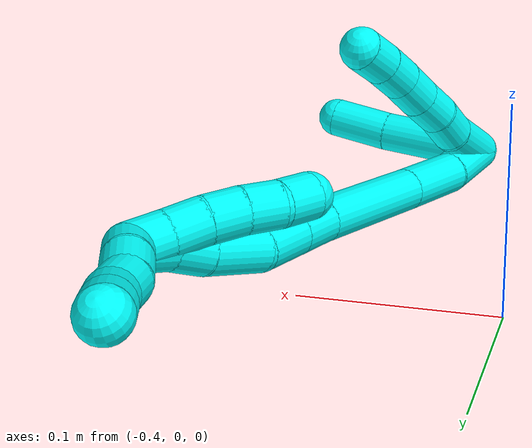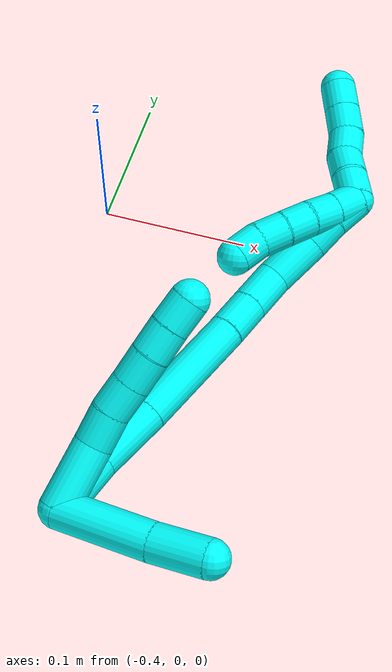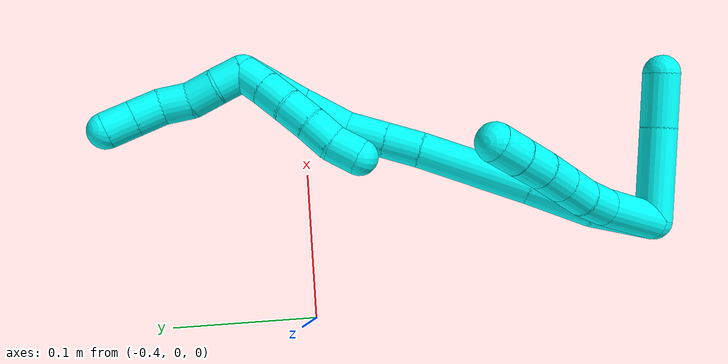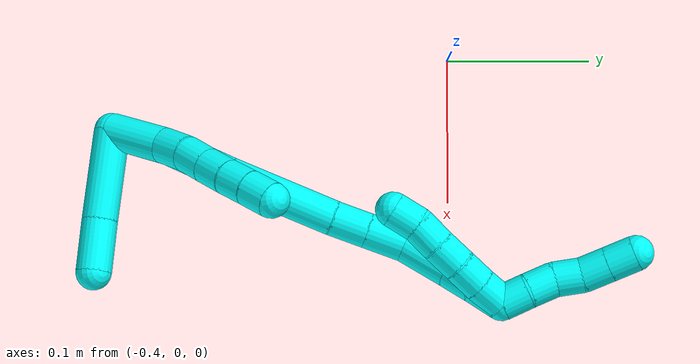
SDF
<sdf version="1.7">
 <world name="default">
  <model name="3">
   <static>0</static>
   <link name="3">
    <collision name="collision-cylinder-e_1_2_8">
     <pose>-0.007446 0.007907 -0.019143 -2.74989 -0.345115 1.44163</pose>
     <geometry><cylinder><radius>0.0125</radius><length>0.044018</length></cylinder></geometry>
     <surface>
      <friction><ode><mu>1.16</mu><mu2>1.16</mu2><slip1>0</slip1><slip2>0</slip2></ode></friction>
      <contact><ode><kp>1e+06</kp><kd>1</kd><max_vel>0</max_vel><min_depth>0.001</min_depth></ode></contact>
     </surface>
    </collision>
    <visual name="visual-cylinder-e_1_2_8">
     <pose>-0.007446 0.007907 -0.019143 -2.74989 -0.345115 1.44163</pose>
     <geometry><cylinder><radius>0.0125</radius><length>0.044018</length></cylinder></geometry>
     <material><ambient>0.003922 1 0.996078 1</ambient></material>
    </visual>
    <collision name="collision-cylinder-e_2_8_9">
     <pose>-0.018914 0.017465 -0.049012 -2.98883 -0.354906 2.33492</pose>
     <geometry><cylinder><radius>0.0125</radius><length>0.023148</length></cylinder></geometry>
     <surface>
      <friction><ode><mu>1.16</mu><mu2>1.16</mu2><slip1>0</slip1><slip2>0</slip2></ode></friction>
      <contact><ode><kp>1e+06</kp><kd>1</kd><max_vel>0</max_vel><min_depth>0.001</min_depth></ode></contact>
     </surface>
    </collision>
    <visual name="visual-cylinder-e_2_8_9">
     <pose>-0.018914 0.017465 -0.049012 -2.98883 -0.354906 2.33492</pose>
     <geometry><cylinder><radius>0.0125</radius><length>0.023148</length></cylinder></geometry>
     <material><ambient>0.003922 1 0.996078 1</ambient></material>
    </visual>
    <collision name="collision-cylinder-e_3_9_10">
     <pose>-0.028024 0.020545 -0.069052 -2.98946 -0.495143 2.55588</pose>
     <geometry><cylinder><radius>0.0125</radius><length>0.021419</length></cylinder></geometry>
     <surface>
      <friction><ode><mu>1.16</mu><mu2>1.16</mu2><slip1>0</slip1><slip2>0</slip2></ode></friction>
      <contact><ode><kp>1e+06</kp><kd>1</kd><max_vel>0</max_vel><min_depth>0.001</min_depth></ode></contact>
     </surface>
    </collision>
    <visual name="visual-cylinder-e_3_9_10">
     <pose>-0.028024 0.020545 -0.069052 -2.98946 -0.495143 2.55588</pose>
     <geometry><cylinder><radius>0.0125</radius><length>0.021419</length></cylinder></geometry>
     <material><ambient>0.003922 1 0.996078 1</ambient></material>
    </visual>
    <collision name="collision-cylinder-e_4_10_11">
     <pose>-0.037881 0.023172 -0.087733 -3.01426 -0.467569 2.61843</pose>
     <geometry><cylinder><radius>0.0125</radius><length>0.021157</length></cylinder></geometry>
     <surface>
      <friction><ode><mu>1.16</mu><mu2>1.16</mu2><slip1>0</slip1><slip2>0</slip2></ode></friction>
      <contact><ode><kp>1e+06</kp><kd>1</kd><max_vel>0</max_vel><min_depth>0.001</min_depth></ode></contact>
     </surface>
    </collision>
    <visual name="visual-cylinder-e_4_10_11">
     <pose>-0.037881 0.023172 -0.087733 -3.01426 -0.467569 2.61843</pose>
     <geometry><cylinder><radius>0.0125</radius><length>0.021157</length></cylinder></geometry>
     <material><ambient>0.003922 1 0.996078 1</ambient></material>
    </visual>
    <collision name="collision-cylinder-e_5_11_12">
     <pose>-0.047202 0.026242 -0.105905 -2.93223 -0.468348 2.31185</pose>
     <geometry><cylinder><radius>0.0125</radius><length>0.020176</length></cylinder></geometry>
     <surface>
      <friction><ode><mu>1.16</mu><mu2>1.16</mu2><slip1>0</slip1><slip2>0</slip2></ode></friction>
      <contact><ode><kp>1e+06</kp><kd>1</kd><max_vel>0</max_vel><min_depth>0.001</min_depth></ode></contact>
     </surface>
    </collision>
    <visual name="visual-cylinder-e_5_11_12">
     <pose>-0.047202 0.026242 -0.105905 -2.93223 -0.468348 2.31185</pose>
     <geometry><cylinder><radius>0.0125</radius><length>0.020176</length></cylinder></geometry>
     <material><ambient>0.003922 1 0.996078 1</ambient></material>
    </visual>
    <collision name="collision-cylinder-e_6_12_6">
     <pose>-0.056587 0.030389 -0.123213 -2.87998 -0.501934 2.19338</pose>
     <geometry><cylinder><radius>0.0125</radius><length>0.020083</length></cylinder></geometry>
     <surface>
      <friction><ode><mu>1.16</mu><mu2>1.16</mu2><slip1>0</slip1><slip2>0</slip2></ode></friction>
      <contact><ode><kp>1e+06</kp><kd>1</kd><max_vel>0</max_vel><min_depth>0.001</min_depth></ode></contact>
     </surface>
    </collision>
    <visual name="visual-cylinder-e_6_12_6">
     <pose>-0.056587 0.030389 -0.123213 -2.87998 -0.501934 2.19338</pose>
     <geometry><cylinder><radius>0.0125</radius><length>0.020083</length></cylinder></geometry>
     <material><ambient>0.003922 1 0.996078 1</ambient></material>
    </visual>
    <collision name="collision-cylinder-e_1_2_13">
     <pose>-0.030538 -0.007855 0.001901 1.33341 -1.31207 -1.08926</pose>
     <geometry><cylinder><radius>0.0125</radius><length>0.063179</length></cylinder></geometry>
     <surface>
      <friction><ode><mu>1.16</mu><mu2>1.16</mu2><slip1>0</slip1><slip2>0</slip2></ode></friction>
      <contact><ode><kp>1e+06</kp><kd>1</kd><max_vel>0</max_vel><min_depth>0.001</min_depth></ode></contact>
     </surface>
    </collision>
    <visual name="visual-cylinder-e_1_2_13">
     <pose>-0.030538 -0.007855 0.001901 1.33341 -1.31207 -1.08926</pose>
     <geometry><cylinder><radius>0.0125</radius><length>0.063179</length></cylinder></geometry>
     <material><ambient>0.003922 1 0.996078 1</ambient></material>
    </visual>
    <collision name="collision-cylinder-e_2_13_5">
     <pose>-0.078774 -0.020771 0.003429 1.64421 -1.29157 -1.36286</pose>
     <geometry><cylinder><radius>0.0125</radius><length>0.036821</length></cylinder></geometry>
     <surface>
      <friction><ode><mu>1.16</mu><mu2>1.16</mu2><slip1>0</slip1><slip2>0</slip2></ode></friction>
      <contact><ode><kp>1e+06</kp><kd>1</kd><max_vel>0</max_vel><min_depth>0.001</min_depth></ode></contact>
     </surface>
    </collision>
    <visual name="visual-cylinder-e_2_13_5">
     <pose>-0.078774 -0.020771 0.003429 1.64421 -1.29157 -1.36286</pose>
     <geometry><cylinder><radius>0.0125</radius><length>0.036821</length></cylinder></geometry>
     <material><ambient>0.003922 1 0.996078 1</ambient></material>
    </visual>
    <collision name="collision-cylinder-e_1_2_14">
     <pose>-0.007887 0.016584 -0.009643 -2.0975 -0.390067 0.661543</pose>
     <geometry><cylinder><radius>0.0125</radius><length>0.041484</length></cylinder></geometry>
     <surface>
      <friction><ode><mu>1.16</mu><mu2>1.16</mu2><slip1>0</slip1><slip2>0</slip2></ode></friction>
      <contact><ode><kp>1e+06</kp><kd>1</kd><max_vel>0</max_vel><min_depth>0.001</min_depth></ode></contact>
     </surface>
    </collision>
    <visual name="visual-cylinder-e_1_2_14">
     <pose>-0.007887 0.016584 -0.009643 -2.0975 -0.390067 0.661543</pose>
     <geometry><cylinder><radius>0.0125</radius><length>0.041484</length></cylinder></geometry>
     <material><ambient>0.003922 1 0.996078 1</ambient></material>
    </visual>
    <collision name="collision-cylinder-e_2_14_15">
     <pose>-0.027469 0.048788 -0.031186 -2.22181 -0.53716 1.01437</pose>
     <geometry><cylinder><radius>0.0125</radius><length>0.04571</length></cylinder></geometry>
     <surface>
      <friction><ode><mu>1.16</mu><mu2>1.16</mu2><slip1>0</slip1><slip2>0</slip2></ode></friction>
      <contact><ode><kp>1e+06</kp><kd>1</kd><max_vel>0</max_vel><min_depth>0.001</min_depth></ode></contact>
     </surface>
    </collision>
    <visual name="visual-cylinder-e_2_14_15">
     <pose>-0.027469 0.048788 -0.031186 -2.22181 -0.53716 1.01437</pose>
     <geometry><cylinder><radius>0.0125</radius><length>0.04571</length></cylinder></geometry>
     <material><ambient>0.003922 1 0.996078 1</ambient></material>
    </visual>
    <collision name="collision-cylinder-e_3_15_16">
     <pose>-0.058386 0.091176 -0.064958 -2.25586 -0.50748 1.00074</pose>
     <geometry><cylinder><radius>0.0125</radius><length>0.079106</length></cylinder></geometry>
     <surface>
      <friction><ode><mu>1.16</mu><mu2>1.16</mu2><slip1>0</slip1><slip2>0</slip2></ode></friction>
      <contact><ode><kp>1e+06</kp><kd>1</kd><max_vel>0</max_vel><min_depth>0.001</min_depth></ode></contact>
     </surface>
    </collision>
    <visual name="visual-cylinder-e_3_15_16">
     <pose>-0.058386 0.091176 -0.064958 -2.25586 -0.50748 1.00074</pose>
     <geometry><cylinder><radius>0.0125</radius><length>0.079106</length></cylinder></geometry>
     <material><ambient>0.003922 1 0.996078 1</ambient></material>
    </visual>
    <collision name="collision-cylinder-e_4_16_17">
     <pose>-0.083248 0.127017 -0.093663 -2.21635 -0.460973 0.87957</pose>
     <geometry><cylinder><radius>0.0125</radius><length>0.025362</length></cylinder></geometry>
     <surface>
      <friction><ode><mu>1.16</mu><mu2>1.16</mu2><slip1>0</slip1><slip2>0</slip2></ode></friction>
      <contact><ode><kp>1e+06</kp><kd>1</kd><max_vel>0</max_vel><min_depth>0.001</min_depth></ode></contact>
     </surface>
    </collision>
    <visual name="visual-cylinder-e_4_16_17">
     <pose>-0.083248 0.127017 -0.093663 -2.21635 -0.460973 0.87957</pose>
     <geometry><cylinder><radius>0.0125</radius><length>0.025362</length></cylinder></geometry>
     <material><ambient>0.003922 1 0.996078 1</ambient></material>
    </visual>
    <collision name="collision-cylinder-e_5_17_18">
     <pose>-0.095227 0.146252 -0.108192 -2.21896 -0.461369 0.882779</pose>
     <geometry><cylinder><radius>0.0125</radius><length>0.028474</length></cylinder></geometry>
     <surface>
      <friction><ode><mu>1.16</mu><mu2>1.16</mu2><slip1>0</slip1><slip2>0</slip2></ode></friction>
      <contact><ode><kp>1e+06</kp><kd>1</kd><max_vel>0</max_vel><min_depth>0.001</min_depth></ode></contact>
     </surface>
    </collision>
    <visual name="visual-cylinder-e_5_17_18">
     <pose>-0.095227 0.146252 -0.108192 -2.21896 -0.461369 0.882779</pose>
     <geometry><cylinder><radius>0.0125</radius><length>0.028474</length></cylinder></geometry>
     <material><ambient>0.003922 1 0.996078 1</ambient></material>
    </visual>
    <collision name="collision-cylinder-e_6_18_19">
     <pose>-0.112155 0.165208 -0.127504 -2.49361 -0.628578 1.53824</pose>
     <geometry><cylinder><radius>0.0125</radius><length>0.036021</length></cylinder></geometry>
     <surface>
      <friction><ode><mu>1.16</mu><mu2>1.16</mu2><slip1>0</slip1><slip2>0</slip2></ode></friction>
      <contact><ode><kp>1e+06</kp><kd>1</kd><max_vel>0</max_vel><min_depth>0.001</min_depth></ode></contact>
     </surface>
    </collision>
    <visual name="visual-cylinder-e_6_18_19">
     <pose>-0.112155 0.165208 -0.127504 -2.49361 -0.628578 1.53824</pose>
     <geometry><cylinder><radius>0.0125</radius><length>0.036021</length></cylinder></geometry>
     <material><ambient>0.003922 1 0.996078 1</ambient></material>
    </visual>
    <collision name="collision-cylinder-e_7_19_20">
     <pose>-0.128968 0.177851 -0.147191 -2.69654 -0.60791 1.89176</pose>
     <geometry><cylinder><radius>0.0125</radius><length>0.021791</length></cylinder></geometry>
     <surface>
      <friction><ode><mu>1.16</mu><mu2>1.16</mu2><slip1>0</slip1><slip2>0</slip2></ode></friction>
      <contact><ode><kp>1e+06</kp><kd>1</kd><max_vel>0</max_vel><min_depth>0.001</min_depth></ode></contact>
     </surface>
    </collision>
    <visual name="visual-cylinder-e_7_19_20">
     <pose>-0.128968 0.177851 -0.147191 -2.69654 -0.60791 1.89176</pose>
     <geometry><cylinder><radius>0.0125</radius><length>0.021791</length></cylinder></geometry>
     <material><ambient>0.003922 1 0.996078 1</ambient></material>
    </visual>
    <collision name="collision-cylinder-e_8_20_1">
     <pose>-0.142062 0.187106 -0.161983 -2.46423 -0.672779 1.56347</pose>
     <geometry><cylinder><radius>0.0125</radius><length>0.022053</length></cylinder></geometry>
     <surface>
      <friction><ode><mu>1.16</mu><mu2>1.16</mu2><slip1>0</slip1><slip2>0</slip2></ode></friction>
      <contact><ode><kp>1e+06</kp><kd>1</kd><max_vel>0</max_vel><min_depth>0.001</min_depth></ode></contact>
     </surface>
    </collision>
    <visual name="visual-cylinder-e_8_20_1">
     <pose>-0.142062 0.187106 -0.161983 -2.46423 -0.672779 1.56347</pose>
     <geometry><cylinder><radius>0.0125</radius><length>0.022053</length></cylinder></geometry>
     <material><ambient>0.003922 1 0.996078 1</ambient></material>
    </visual>
    <collision name="collision-cylinder-e_1_1_21">
     <pose>-0.145774 0.199552 -0.175062 -2.30525 0.321492 -0.699736</pose>
     <geometry><cylinder><radius>0.0125</radius><length>0.02</length></cylinder></geometry>
     <surface>
      <friction><ode><mu>1.16</mu><mu2>1.16</mu2><slip1>0</slip1><slip2>0</slip2></ode></friction>
      <contact><ode><kp>1e+06</kp><kd>1</kd><max_vel>0</max_vel><min_depth>0.001</min_depth></ode></contact>
     </surface>
    </collision>
    <visual name="visual-cylinder-e_1_1_21">
     <pose>-0.145774 0.199552 -0.175062 -2.30525 0.321492 -0.699736</pose>
     <geometry><cylinder><radius>0.0125</radius><length>0.02</length></cylinder></geometry>
     <material><ambient>0.003922 1 0.996078 1</ambient></material>
    </visual>
    <collision name="collision-cylinder-e_2_21_22">
     <pose>-0.13974 0.214745 -0.18645 -2.1237 0.291497 -0.514491</pose>
     <geometry><cylinder><radius>0.0125</radius><length>0.02</length></cylinder></geometry>
     <surface>
      <friction><ode><mu>1.16</mu><mu2>1.16</mu2><slip1>0</slip1><slip2>0</slip2></ode></friction>
      <contact><ode><kp>1e+06</kp><kd>1</kd><max_vel>0</max_vel><min_depth>0.001</min_depth></ode></contact>
     </surface>
    </collision>
    <visual name="visual-cylinder-e_2_21_22">
     <pose>-0.13974 0.214745 -0.18645 -2.1237 0.291497 -0.514491</pose>
     <geometry><cylinder><radius>0.0125</radius><length>0.02</length></cylinder></geometry>
     <material><ambient>0.003922 1 0.996078 1</ambient></material>
    </visual>
    <collision name="collision-cylinder-e_3_22_23">
     <pose>-0.136428 0.230388 -0.198089 -2.29365 0.043769 -0.096914</pose>
     <geometry><cylinder><radius>0.0125</radius><length>0.02</length></cylinder></geometry>
     <surface>
      <friction><ode><mu>1.16</mu><mu2>1.16</mu2><slip1>0</slip1><slip2>0</slip2></ode></friction>
      <contact><ode><kp>1e+06</kp><kd>1</kd><max_vel>0</max_vel><min_depth>0.001</min_depth></ode></contact>
     </surface>
    </collision>
    <visual name="visual-cylinder-e_3_22_23">
     <pose>-0.136428 0.230388 -0.198089 -2.29365 0.043769 -0.096914</pose>
     <geometry><cylinder><radius>0.0125</radius><length>0.02</length></cylinder></geometry>
     <material><ambient>0.003922 1 0.996078 1</ambient></material>
    </visual>
    <collision name="collision-cylinder-e_4_23_24">
     <pose>-0.133211 0.244086 -0.212031 -2.43926 0.281664 -0.738467</pose>
     <geometry><cylinder><radius>0.0125</radius><length>0.02</length></cylinder></geometry>
     <surface>
      <friction><ode><mu>1.16</mu><mu2>1.16</mu2><slip1>0</slip1><slip2>0</slip2></ode></friction>
      <contact><ode><kp>1e+06</kp><kd>1</kd><max_vel>0</max_vel><min_depth>0.001</min_depth></ode></contact>
     </surface>
    </collision>
    <visual name="visual-cylinder-e_4_23_24">
     <pose>-0.133211 0.244086 -0.212031 -2.43926 0.281664 -0.738467</pose>
     <geometry><cylinder><radius>0.0125</radius><length>0.02</length></cylinder></geometry>
     <material><ambient>0.003922 1 0.996078 1</ambient></material>
    </visual>
    <collision name="collision-cylinder-e_5_24_4">
     <pose>-0.127623 0.256444 -0.226729 -2.4457 0.284713 -0.752657</pose>
     <geometry><cylinder><radius>0.0125</radius><length>0.02</length></cylinder></geometry>
     <surface>
      <friction><ode><mu>1.16</mu><mu2>1.16</mu2><slip1>0</slip1><slip2>0</slip2></ode></friction>
      <contact><ode><kp>1e+06</kp><kd>1</kd><max_vel>0</max_vel><min_depth>0.001</min_depth></ode></contact>
     </surface>
    </collision>
    <visual name="visual-cylinder-e_5_24_4">
     <pose>-0.127623 0.256444 -0.226729 -2.4457 0.284713 -0.752657</pose>
     <geometry><cylinder><radius>0.0125</radius><length>0.02</length></cylinder></geometry>
     <material><ambient>0.003922 1 0.996078 1</ambient></material>
    </visual>
    <collision name="collision-cylinder-e_1_1_25">
     <pose>-0.14176 0.186295 -0.165556 1.10209 0.799918 0.508355</pose>
     <geometry><cylinder><radius>0.0125</radius><length>0.02</length></cylinder></geometry>
     <surface>
      <friction><ode><mu>1.16</mu><mu2>1.16</mu2><slip1>0</slip1><slip2>0</slip2></ode></friction>
      <contact><ode><kp>1e+06</kp><kd>1</kd><max_vel>0</max_vel><min_depth>0.001</min_depth></ode></contact>
     </surface>
    </collision>
    <visual name="visual-cylinder-e_1_1_25">
     <pose>-0.14176 0.186295 -0.165556 1.10209 0.799918 0.508355</pose>
     <geometry><cylinder><radius>0.0125</radius><length>0.02</length></cylinder></geometry>
     <material><ambient>0.003922 1 0.996078 1</ambient></material>
    </visual>
    <collision name="collision-cylinder-e_2_25_26">
     <pose>-0.127112 0.173932 -0.15989 1.18191 0.844293 0.585395</pose>
     <geometry><cylinder><radius>0.0125</radius><length>0.02</length></cylinder></geometry>
     <surface>
      <friction><ode><mu>1.16</mu><mu2>1.16</mu2><slip1>0</slip1><slip2>0</slip2></ode></friction>
      <contact><ode><kp>1e+06</kp><kd>1</kd><max_vel>0</max_vel><min_depth>0.001</min_depth></ode></contact>
     </surface>
    </collision>
    <visual name="visual-cylinder-e_2_25_26">
     <pose>-0.127112 0.173932 -0.15989 1.18191 0.844293 0.585395</pose>
     <geometry><cylinder><radius>0.0125</radius><length>0.02</length></cylinder></geometry>
     <material><ambient>0.003922 1 0.996078 1</ambient></material>
    </visual>
    <collision name="collision-cylinder-e_3_26_27">
     <pose>-0.112072 0.162185 -0.153995 1.02823 0.858073 0.505659</pose>
     <geometry><cylinder><radius>0.0125</radius><length>0.02</length></cylinder></geometry>
     <surface>
      <friction><ode><mu>1.16</mu><mu2>1.16</mu2><slip1>0</slip1><slip2>0</slip2></ode></friction>
      <contact><ode><kp>1e+06</kp><kd>1</kd><max_vel>0</max_vel><min_depth>0.001</min_depth></ode></contact>
     </surface>
    </collision>
    <visual name="visual-cylinder-e_3_26_27">
     <pose>-0.112072 0.162185 -0.153995 1.02823 0.858073 0.505659</pose>
     <geometry><cylinder><radius>0.0125</radius><length>0.02</length></cylinder></geometry>
     <material><ambient>0.003922 1 0.996078 1</ambient></material>
    </visual>
    <collision name="collision-cylinder-e_4_27_28">
     <pose>-0.096639 0.151694 -0.146852 0.914559 0.905457 0.469865</pose>
     <geometry><cylinder><radius>0.0125</radius><length>0.02</length></cylinder></geometry>
     <surface>
      <friction><ode><mu>1.16</mu><mu2>1.16</mu2><slip1>0</slip1><slip2>0</slip2></ode></friction>
      <contact><ode><kp>1e+06</kp><kd>1</kd><max_vel>0</max_vel><min_depth>0.001</min_depth></ode></contact>
     </surface>
    </collision>
    <visual name="visual-cylinder-e_4_27_28">
     <pose>-0.096639 0.151694 -0.146852 0.914559 0.905457 0.469865</pose>
     <geometry><cylinder><radius>0.0125</radius><length>0.02</length></cylinder></geometry>
     <material><ambient>0.003922 1 0.996078 1</ambient></material>
    </visual>
    <collision name="collision-cylinder-e_5_28_3">
     <pose>-0.082627 0.140552 -0.138273 0.914787 0.661719 0.334964</pose>
     <geometry><cylinder><radius>0.0125</radius><length>0.02</length></cylinder></geometry>
     <surface>
      <friction><ode><mu>1.16</mu><mu2>1.16</mu2><slip1>0</slip1><slip2>0</slip2></ode></friction>
      <contact><ode><kp>1e+06</kp><kd>1</kd><max_vel>0</max_vel><min_depth>0.001</min_depth></ode></contact>
     </surface>
    </collision>
    <visual name="visual-cylinder-e_5_28_3">
     <pose>-0.082627 0.140552 -0.138273 0.914787 0.661719 0.334964</pose>
     <geometry><cylinder><radius>0.0125</radius><length>0.02</length></cylinder></geometry>
     <material><ambient>0.003922 1 0.996078 1</ambient></material>
    </visual>
    <collision name="collision-sphere-3">
     <pose>-0.076482 0.1343 -0.133461 0 -0 0</pose>
     <geometry><sphere><radius>0.0125</radius></sphere></geometry>
     <surface>
      <friction><ode><mu>1.16</mu><mu2>1.16</mu2><slip1>0</slip1><slip2>0</slip2></ode></friction>
      <contact><ode><kp>1e+06</kp><kd>1</kd><max_vel>0</max_vel><min_depth>0.001</min_depth></ode></contact>
     </surface>
    </collision>
    <visual name="visual-sphere-3">
     <pose>-0.076482 0.1343 -0.133461 0 -0 0</pose>
     <geometry><sphere><radius>0.0125</radius></sphere></geometry>
     <material><ambient>0.003922 1 0.996078 1</ambient></material>
    </visual>
    <collision name="collision-sphere-28">
     <pose>-0.088772 0.146803 -0.143085 0 -0 0</pose>
     <geometry><sphere><radius>0.0125</radius></sphere></geometry>
     <surface>
      <friction><ode><mu>1.16</mu><mu2>1.16</mu2><slip1>0</slip1><slip2>0</slip2></ode></friction>
      <contact><ode><kp>1e+06</kp><kd>1</kd><max_vel>0</max_vel><min_depth>0.001</min_depth></ode></contact>
     </surface>
    </collision>
    <visual name="visual-sphere-28">
     <pose>-0.088772 0.146803 -0.143085 0 -0 0</pose>
     <geometry><sphere><radius>0.0125</radius></sphere></geometry>
     <material><ambient>0.003922 1 0.996078 1</ambient></material>
    </visual>
    <collision name="collision-sphere-27">
     <pose>-0.104506 0.156585 -0.150618 0 -0 0</pose>
     <geometry><sphere><radius>0.0125</radius></sphere></geometry>
     <surface>
      <friction><ode><mu>1.16</mu><mu2>1.16</mu2><slip1>0</slip1><slip2>0</slip2></ode></friction>
      <contact><ode><kp>1e+06</kp><kd>1</kd><max_vel>0</max_vel><min_depth>0.001</min_depth></ode></contact>
     </surface>
    </collision>
    <visual name="visual-sphere-27">
     <pose>-0.104506 0.156585 -0.150618 0 -0 0</pose>
     <geometry><sphere><radius>0.0125</radius></sphere></geometry>
     <material><ambient>0.003922 1 0.996078 1</ambient></material>
    </visual>
    <collision name="collision-sphere-26">
     <pose>-0.119637 0.167785 -0.157371 0 -0 0</pose>
     <geometry><sphere><radius>0.0125</radius></sphere></geometry>
     <surface>
      <friction><ode><mu>1.16</mu><mu2>1.16</mu2><slip1>0</slip1><slip2>0</slip2></ode></friction>
      <contact><ode><kp>1e+06</kp><kd>1</kd><max_vel>0</max_vel><min_depth>0.001</min_depth></ode></contact>
     </surface>
    </collision>
    <visual name="visual-sphere-26">
     <pose>-0.119637 0.167785 -0.157371 0 -0 0</pose>
     <geometry><sphere><radius>0.0125</radius></sphere></geometry>
     <material><ambient>0.003922 1 0.996078 1</ambient></material>
    </visual>
    <collision name="collision-sphere-25">
     <pose>-0.134587 0.180078 -0.162408 0 -0 0</pose>
     <geometry><sphere><radius>0.0125</radius></sphere></geometry>
     <surface>
      <friction><ode><mu>1.16</mu><mu2>1.16</mu2><slip1>0</slip1><slip2>0</slip2></ode></friction>
      <contact><ode><kp>1e+06</kp><kd>1</kd><max_vel>0</max_vel><min_depth>0.001</min_depth></ode></contact>
     </surface>
    </collision>
    <visual name="visual-sphere-25">
     <pose>-0.134587 0.180078 -0.162408 0 -0 0</pose>
     <geometry><sphere><radius>0.0125</radius></sphere></geometry>
     <material><ambient>0.003922 1 0.996078 1</ambient></material>
    </visual>
    <collision name="collision-sphere-4">
     <pose>-0.124814 0.262596 -0.234095 0 -0 0</pose>
     <geometry><sphere><radius>0.0125</radius></sphere></geometry>
     <surface>
      <friction><ode><mu>1.16</mu><mu2>1.16</mu2><slip1>0</slip1><slip2>0</slip2></ode></friction>
      <contact><ode><kp>1e+06</kp><kd>1</kd><max_vel>0</max_vel><min_depth>0.001</min_depth></ode></contact>
     </surface>
    </collision>
    <visual name="visual-sphere-4">
     <pose>-0.124814 0.262596 -0.234095 0 -0 0</pose>
     <geometry><sphere><radius>0.0125</radius></sphere></geometry>
     <material><ambient>0.003922 1 0.996078 1</ambient></material>
    </visual>
    <collision name="collision-sphere-24">
     <pose>-0.130432 0.250291 -0.219363 0 -0 0</pose>
     <geometry><sphere><radius>0.0125</radius></sphere></geometry>
     <surface>
      <friction><ode><mu>1.16</mu><mu2>1.16</mu2><slip1>0</slip1><slip2>0</slip2></ode></friction>
      <contact><ode><kp>1e+06</kp><kd>1</kd><max_vel>0</max_vel><min_depth>0.001</min_depth></ode></contact>
     </surface>
    </collision>
    <visual name="visual-sphere-24">
     <pose>-0.130432 0.250291 -0.219363 0 -0 0</pose>
     <geometry><sphere><radius>0.0125</radius></sphere></geometry>
     <material><ambient>0.003922 1 0.996078 1</ambient></material>
    </visual>
    <collision name="collision-sphere-23">
     <pose>-0.135991 0.23788 -0.204698 0 -0 0</pose>
     <geometry><sphere><radius>0.0125</radius></sphere></geometry>
     <surface>
      <friction><ode><mu>1.16</mu><mu2>1.16</mu2><slip1>0</slip1><slip2>0</slip2></ode></friction>
      <contact><ode><kp>1e+06</kp><kd>1</kd><max_vel>0</max_vel><min_depth>0.001</min_depth></ode></contact>
     </surface>
    </collision>
    <visual name="visual-sphere-23">
     <pose>-0.135991 0.23788 -0.204698 0 -0 0</pose>
     <geometry><sphere><radius>0.0125</radius></sphere></geometry>
     <material><ambient>0.003922 1 0.996078 1</ambient></material>
    </visual>
    <collision name="collision-sphere-22">
     <pose>-0.136866 0.222896 -0.19148 0 -0 0</pose>
     <geometry><sphere><radius>0.0125</radius></sphere></geometry>
     <surface>
      <friction><ode><mu>1.16</mu><mu2>1.16</mu2><slip1>0</slip1><slip2>0</slip2></ode></friction>
      <contact><ode><kp>1e+06</kp><kd>1</kd><max_vel>0</max_vel><min_depth>0.001</min_depth></ode></contact>
     </surface>
    </collision>
    <visual name="visual-sphere-22">
     <pose>-0.136866 0.222896 -0.19148 0 -0 0</pose>
     <geometry><sphere><radius>0.0125</radius></sphere></geometry>
     <material><ambient>0.003922 1 0.996078 1</ambient></material>
    </visual>
    <collision name="collision-sphere-21">
     <pose>-0.142614 0.206594 -0.18142 0 -0 0</pose>
     <geometry><sphere><radius>0.0125</radius></sphere></geometry>
     <surface>
      <friction><ode><mu>1.16</mu><mu2>1.16</mu2><slip1>0</slip1><slip2>0</slip2></ode></friction>
      <contact><ode><kp>1e+06</kp><kd>1</kd><max_vel>0</max_vel><min_depth>0.001</min_depth></ode></contact>
     </surface>
    </collision>
    <visual name="visual-sphere-21">
     <pose>-0.142614 0.206594 -0.18142 0 -0 0</pose>
     <geometry><sphere><radius>0.0125</radius></sphere></geometry>
     <material><ambient>0.003922 1 0.996078 1</ambient></material>
    </visual>
    <collision name="collision-sphere-1">
     <pose>-0.148933 0.192511 -0.168703 0 -0 0</pose>
     <geometry><sphere><radius>0.0125</radius></sphere></geometry>
     <surface>
      <friction><ode><mu>1.16</mu><mu2>1.16</mu2><slip1>0</slip1><slip2>0</slip2></ode></friction>
      <contact><ode><kp>1e+06</kp><kd>1</kd><max_vel>0</max_vel><min_depth>0.001</min_depth></ode></contact>
     </surface>
    </collision>
    <visual name="visual-sphere-1">
     <pose>-0.148933 0.192511 -0.168703 0 -0 0</pose>
     <geometry><sphere><radius>0.0125</radius></sphere></geometry>
     <material><ambient>0.003922 1 0.996078 1</ambient></material>
    </visual>
    <collision name="collision-sphere-12">
     <pose>-0.051756 0.028113 -0.11471 0 -0 0</pose>
     <geometry><sphere><radius>0.0125</radius></sphere></geometry>
     <surface>
      <friction><ode><mu>1.16</mu><mu2>1.16</mu2><slip1>0</slip1><slip2>0</slip2></ode></friction>
      <contact><ode><kp>1e+06</kp><kd>1</kd><max_vel>0</max_vel><min_depth>0.001</min_depth></ode></contact>
     </surface>
    </collision>
    <visual name="visual-sphere-12">
     <pose>-0.051756 0.028113 -0.11471 0 -0 0</pose>
     <geometry><sphere><radius>0.0125</radius></sphere></geometry>
     <material><ambient>0.003922 1 0.996078 1</ambient></material>
    </visual>
    <collision name="collision-sphere-11">
     <pose>-0.042649 0.024371 -0.0971 0 -0 0</pose>
     <geometry><sphere><radius>0.0125</radius></sphere></geometry>
     <surface>
      <friction><ode><mu>1.16</mu><mu2>1.16</mu2><slip1>0</slip1><slip2>0</slip2></ode></friction>
      <contact><ode><kp>1e+06</kp><kd>1</kd><max_vel>0</max_vel><min_depth>0.001</min_depth></ode></contact>
     </surface>
    </collision>
    <visual name="visual-sphere-11">
     <pose>-0.042649 0.024371 -0.0971 0 -0 0</pose>
     <geometry><sphere><radius>0.0125</radius></sphere></geometry>
     <material><ambient>0.003922 1 0.996078 1</ambient></material>
    </visual>
    <collision name="collision-sphere-10">
     <pose>-0.033113 0.021973 -0.078366 0 -0 0</pose>
     <geometry><sphere><radius>0.0125</radius></sphere></geometry>
     <surface>
      <friction><ode><mu>1.16</mu><mu2>1.16</mu2><slip1>0</slip1><slip2>0</slip2></ode></friction>
      <contact><ode><kp>1e+06</kp><kd>1</kd><max_vel>0</max_vel><min_depth>0.001</min_depth></ode></contact>
     </surface>
    </collision>
    <visual name="visual-sphere-10">
     <pose>-0.033113 0.021973 -0.078366 0 -0 0</pose>
     <geometry><sphere><radius>0.0125</radius></sphere></geometry>
     <material><ambient>0.003922 1 0.996078 1</ambient></material>
    </visual>
    <collision name="collision-sphere-9">
     <pose>-0.022935 0.019117 -0.059738 0 -0 0</pose>
     <geometry><sphere><radius>0.0125</radius></sphere></geometry>
     <surface>
      <friction><ode><mu>1.16</mu><mu2>1.16</mu2><slip1>0</slip1><slip2>0</slip2></ode></friction>
      <contact><ode><kp>1e+06</kp><kd>1</kd><max_vel>0</max_vel><min_depth>0.001</min_depth></ode></contact>
     </surface>
    </collision>
    <visual name="visual-sphere-9">
     <pose>-0.022935 0.019117 -0.059738 0 -0 0</pose>
     <geometry><sphere><radius>0.0125</radius></sphere></geometry>
     <material><ambient>0.003922 1 0.996078 1</ambient></material>
    </visual>
    <collision name="collision-sphere-2">
     <geometry><sphere><radius>0.0125</radius></sphere></geometry>
     <surface>
      <friction><ode><mu>1.16</mu><mu2>1.16</mu2><slip1>0</slip1><slip2>0</slip2></ode></friction>
      <contact><ode><kp>1e+06</kp><kd>1</kd><max_vel>0</max_vel><min_depth>0.001</min_depth></ode></contact>
     </surface>
    </collision>
    <visual name="visual-sphere-2">
     <geometry><sphere><radius>0.0125</radius></sphere></geometry>
     <material><ambient>0.003922 1 0.996078 1</ambient></material>
    </visual>
    <collision name="collision-sphere-19">
     <pose>-0.122745 0.174001 -0.139119 0 -0 0</pose>
     <geometry><sphere><radius>0.0125</radius></sphere></geometry>
     <surface>
      <friction><ode><mu>1.16</mu><mu2>1.16</mu2><slip1>0</slip1><slip2>0</slip2></ode></friction>
      <contact><ode><kp>1e+06</kp><kd>1</kd><max_vel>0</max_vel><min_depth>0.001</min_depth></ode></contact>
     </surface>
    </collision>
    <visual name="visual-sphere-19">
     <pose>-0.122745 0.174001 -0.139119 0 -0 0</pose>
     <geometry><sphere><radius>0.0125</radius></sphere></geometry>
     <material><ambient>0.003922 1 0.996078 1</ambient></material>
    </visual>
    <collision name="collision-sphere-8">
     <pose>-0.014892 0.015814 -0.038286 0 -0 0</pose>
     <geometry><sphere><radius>0.0125</radius></sphere></geometry>
     <surface>
      <friction><ode><mu>1.16</mu><mu2>1.16</mu2><slip1>0</slip1><slip2>0</slip2></ode></friction>
      <contact><ode><kp>1e+06</kp><kd>1</kd><max_vel>0</max_vel><min_depth>0.001</min_depth></ode></contact>
     </surface>
    </collision>
    <visual name="visual-sphere-8">
     <pose>-0.014892 0.015814 -0.038286 0 -0 0</pose>
     <geometry><sphere><radius>0.0125</radius></sphere></geometry>
     <material><ambient>0.003922 1 0.996078 1</ambient></material>
    </visual>
    <collision name="collision-sphere-6">
     <pose>-0.061418 0.032666 -0.131716 0 -0 0</pose>
     <geometry><sphere><radius>0.0125</radius></sphere></geometry>
     <surface>
      <friction><ode><mu>1.16</mu><mu2>1.16</mu2><slip1>0</slip1><slip2>0</slip2></ode></friction>
      <contact><ode><kp>1e+06</kp><kd>1</kd><max_vel>0</max_vel><min_depth>0.001</min_depth></ode></contact>
     </surface>
    </collision>
    <visual name="visual-sphere-6">
     <pose>-0.061418 0.032666 -0.131716 0 -0 0</pose>
     <geometry><sphere><radius>0.0125</radius></sphere></geometry>
     <material><ambient>0.003922 1 0.996078 1</ambient></material>
    </visual>
    <collision name="collision-sphere-13">
     <pose>-0.061077 -0.015711 0.003801 0 -0 0</pose>
     <geometry><sphere><radius>0.0125</radius></sphere></geometry>
     <surface>
      <friction><ode><mu>1.16</mu><mu2>1.16</mu2><slip1>0</slip1><slip2>0</slip2></ode></friction>
      <contact><ode><kp>1e+06</kp><kd>1</kd><max_vel>0</max_vel><min_depth>0.001</min_depth></ode></contact>
     </surface>
    </collision>
    <visual name="visual-sphere-13">
     <pose>-0.061077 -0.015711 0.003801 0 -0 0</pose>
     <geometry><sphere><radius>0.0125</radius></sphere></geometry>
     <material><ambient>0.003922 1 0.996078 1</ambient></material>
    </visual>
    <collision name="collision-sphere-5">
     <pose>-0.096471 -0.025832 0.003057 0 -0 0</pose>
     <geometry><sphere><radius>0.0125</radius></sphere></geometry>
     <surface>
      <friction><ode><mu>1.16</mu><mu2>1.16</mu2><slip1>0</slip1><slip2>0</slip2></ode></friction>
      <contact><ode><kp>1e+06</kp><kd>1</kd><max_vel>0</max_vel><min_depth>0.001</min_depth></ode></contact>
     </surface>
    </collision>
    <visual name="visual-sphere-5">
     <pose>-0.096471 -0.025832 0.003057 0 -0 0</pose>
     <geometry><sphere><radius>0.0125</radius></sphere></geometry>
     <material><ambient>0.003922 1 0.996078 1</ambient></material>
    </visual>
    <collision name="collision-sphere-14">
     <pose>-0.015774 0.033168 -0.019287 0 -0 0</pose>
     <geometry><sphere><radius>0.0125</radius></sphere></geometry>
     <surface>
      <friction><ode><mu>1.16</mu><mu2>1.16</mu2><slip1>0</slip1><slip2>0</slip2></ode></friction>
      <contact><ode><kp>1e+06</kp><kd>1</kd><max_vel>0</max_vel><min_depth>0.001</min_depth></ode></contact>
     </surface>
    </collision>
    <visual name="visual-sphere-14">
     <pose>-0.015774 0.033168 -0.019287 0 -0 0</pose>
     <geometry><sphere><radius>0.0125</radius></sphere></geometry>
     <material><ambient>0.003922 1 0.996078 1</ambient></material>
    </visual>
    <collision name="collision-sphere-15">
     <pose>-0.039164 0.064408 -0.043086 0 -0 0</pose>
     <geometry><sphere><radius>0.0125</radius></sphere></geometry>
     <surface>
      <friction><ode><mu>1.16</mu><mu2>1.16</mu2><slip1>0</slip1><slip2>0</slip2></ode></friction>
      <contact><ode><kp>1e+06</kp><kd>1</kd><max_vel>0</max_vel><min_depth>0.001</min_depth></ode></contact>
     </surface>
    </collision>
    <visual name="visual-sphere-15">
     <pose>-0.039164 0.064408 -0.043086 0 -0 0</pose>
     <geometry><sphere><radius>0.0125</radius></sphere></geometry>
     <material><ambient>0.003922 1 0.996078 1</ambient></material>
    </visual>
    <collision name="collision-sphere-16">
     <pose>-0.077607 0.117945 -0.08683 0 -0 0</pose>
     <geometry><sphere><radius>0.0125</radius></sphere></geometry>
     <surface>
      <friction><ode><mu>1.16</mu><mu2>1.16</mu2><slip1>0</slip1><slip2>0</slip2></ode></friction>
      <contact><ode><kp>1e+06</kp><kd>1</kd><max_vel>0</max_vel><min_depth>0.001</min_depth></ode></contact>
     </surface>
    </collision>
    <visual name="visual-sphere-16">
     <pose>-0.077607 0.117945 -0.08683 0 -0 0</pose>
     <geometry><sphere><radius>0.0125</radius></sphere></geometry>
     <material><ambient>0.003922 1 0.996078 1</ambient></material>
    </visual>
    <collision name="collision-sphere-17">
     <pose>-0.088889 0.136089 -0.100496 0 -0 0</pose>
     <geometry><sphere><radius>0.0125</radius></sphere></geometry>
     <surface>
      <friction><ode><mu>1.16</mu><mu2>1.16</mu2><slip1>0</slip1><slip2>0</slip2></ode></friction>
      <contact><ode><kp>1e+06</kp><kd>1</kd><max_vel>0</max_vel><min_depth>0.001</min_depth></ode></contact>
     </surface>
    </collision>
    <visual name="visual-sphere-17">
     <pose>-0.088889 0.136089 -0.100496 0 -0 0</pose>
     <geometry><sphere><radius>0.0125</radius></sphere></geometry>
     <material><ambient>0.003922 1 0.996078 1</ambient></material>
    </visual>
    <collision name="collision-sphere-18">
     <pose>-0.101565 0.156415 -0.115889 0 -0 0</pose>
     <geometry><sphere><radius>0.0125</radius></sphere></geometry>
     <surface>
      <friction><ode><mu>1.16</mu><mu2>1.16</mu2><slip1>0</slip1><slip2>0</slip2></ode></friction>
      <contact><ode><kp>1e+06</kp><kd>1</kd><max_vel>0</max_vel><min_depth>0.001</min_depth></ode></contact>
     </surface>
    </collision>
    <visual name="visual-sphere-18">
     <pose>-0.101565 0.156415 -0.115889 0 -0 0</pose>
     <geometry><sphere><radius>0.0125</radius></sphere></geometry>
     <material><ambient>0.003922 1 0.996078 1</ambient></material>
    </visual>
    <collision name="collision-sphere-20">
     <pose>-0.135191 0.181701 -0.155263 0 -0 0</pose>
     <geometry><sphere><radius>0.0125</radius></sphere></geometry>
     <surface>
      <friction><ode><mu>1.16</mu><mu2>1.16</mu2><slip1>0</slip1><slip2>0</slip2></ode></friction>
      <contact><ode><kp>1e+06</kp><kd>1</kd><max_vel>0</max_vel><min_depth>0.001</min_depth></ode></contact>
     </surface>
    </collision>
    <visual name="visual-sphere-20">
     <pose>-0.135191 0.181701 -0.155263 0 -0 0</pose>
     <geometry><sphere><radius>0.0125</radius></sphere></geometry>
     <material><ambient>0.003922 1 0.996078 1</ambient></material>
    </visual>
    <inertial>
     <pose>-0.073271 0.096304 -0.091638 0 -0 0</pose>
     <mass>0.75</mass>
     <inertia><ixx>8.6e-05</ixx><ixy>0</ixy><ixz>0</ixz><iyy>0.000112</iyy><iyz>0</iyz><izz>-1e-05</izz></inertia>
    </inertial>
   </link>
   <pose>-0.350595 -0.234029 0.019591 -2.46391 -0.003076 -3.03148</pose>
  </model>
 </world>
</sdf>
